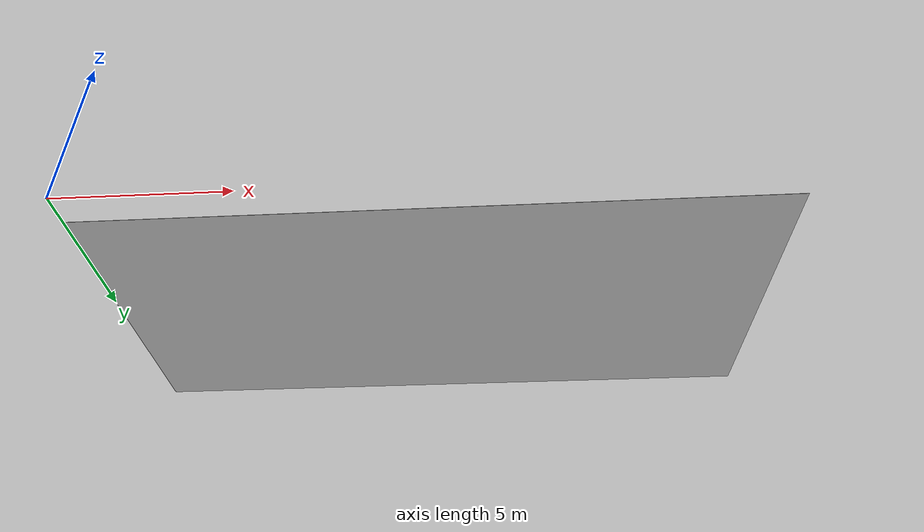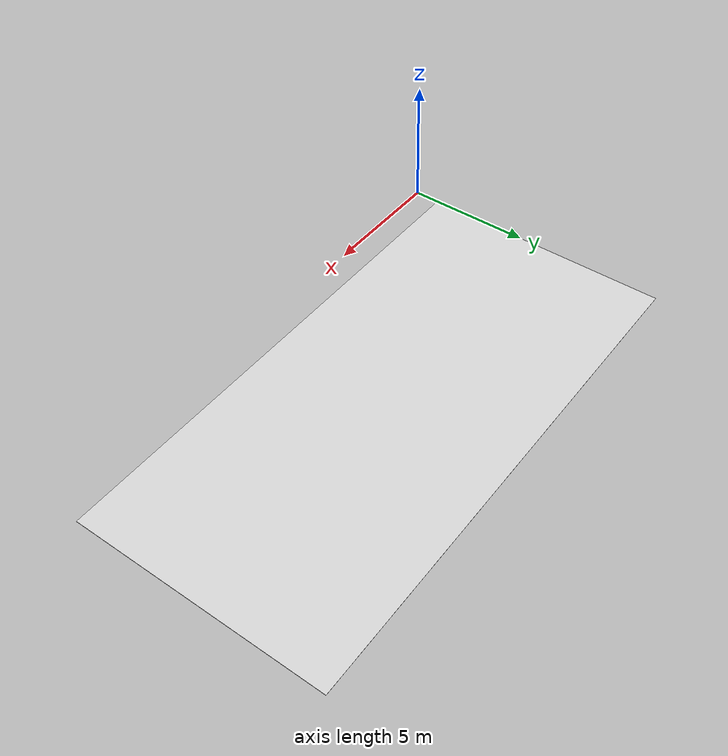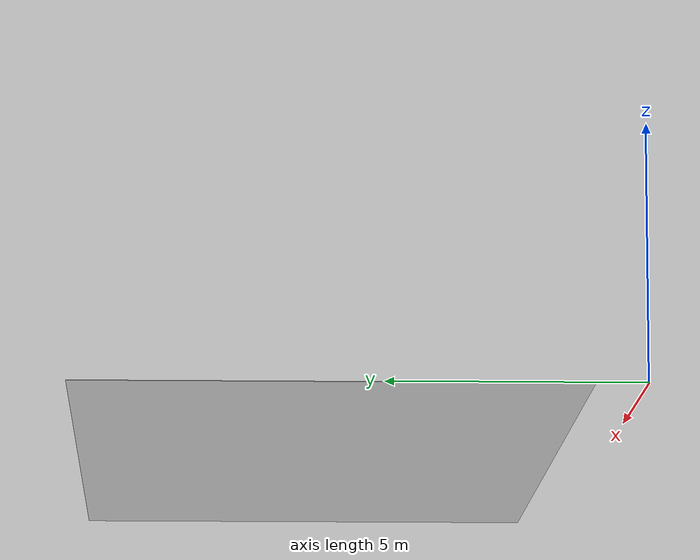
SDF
<?xml version="1.0" ?>
<sdf version="1.5">
  <model name="race_field">
    <static>true</static>
    <link name="link">
      <pose>0 1 0 0 0 0</pose>
      <collision name="collision">
        <geometry>
            <mesh>
              <uri>
                model://race_field/mesh/campo_gara.stl
              </uri>
              <scale>
                0.001 0.001 0.001
              </scale>
            </mesh>
        </geometry>
      </collision>
      <visual name="visual">
        <cast_shadows>true</cast_shadows>
        <geometry>
            <mesh>
              <uri>
                model://race_field/mesh/campo_gara.stl
              </uri>
              <scale>
                0.001 0.001 0.001
              </scale>
            </mesh>
        </geometry>
        <material>
          <ambient>0.8275 0.8275 0.8275 1</ambient>
          <diffuse>0.8275 0.8275 0.8275 1</diffuse>
        </material>
      </visual>
    </link>
  </model>
</sdf>
